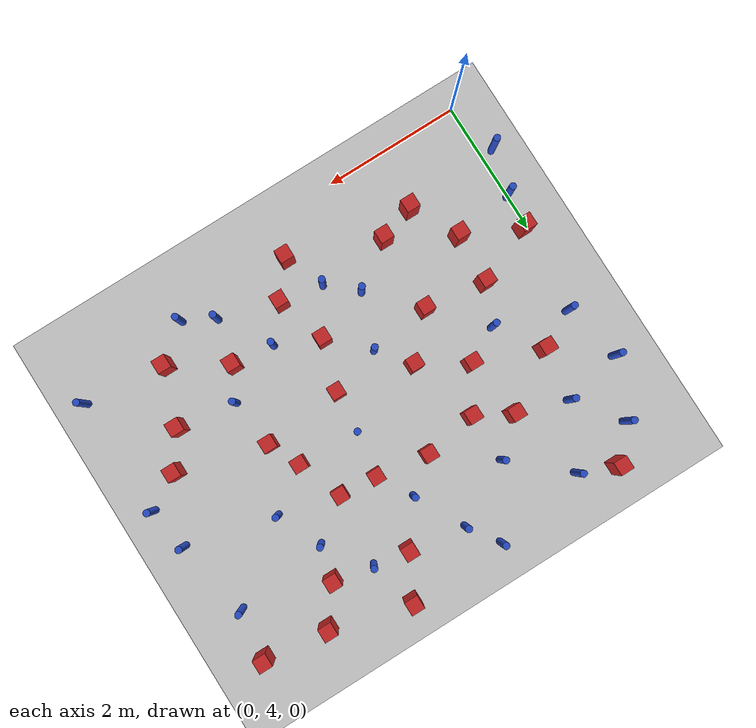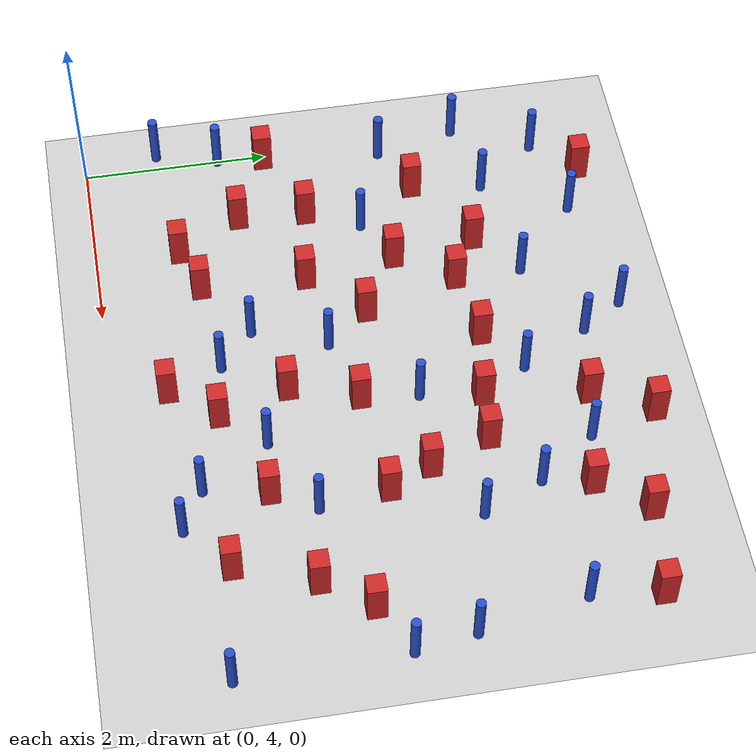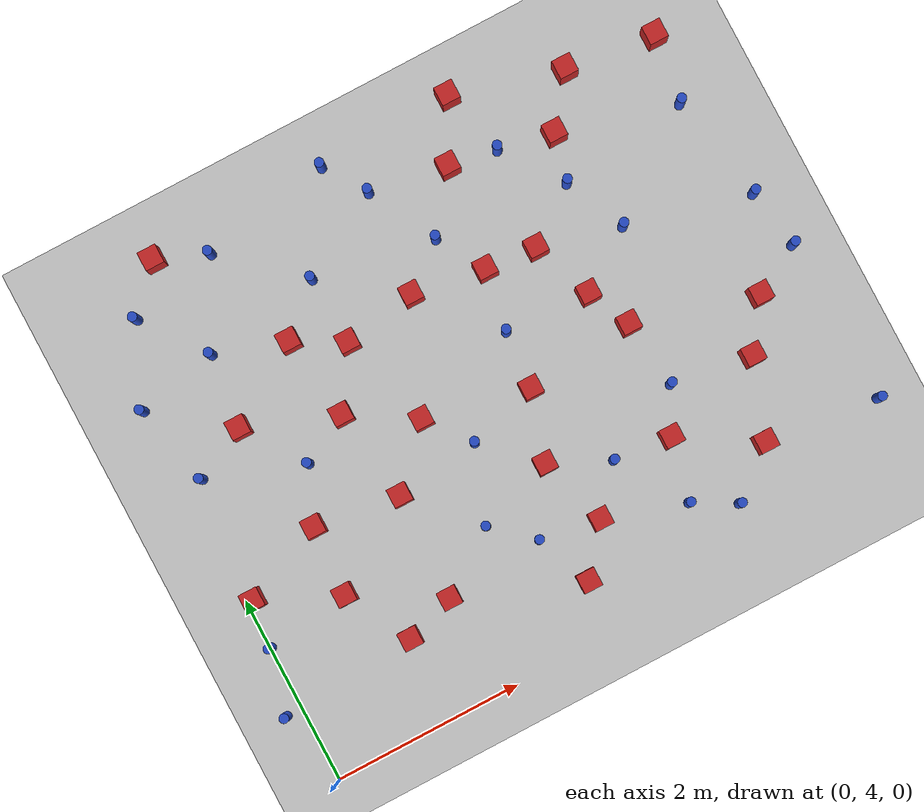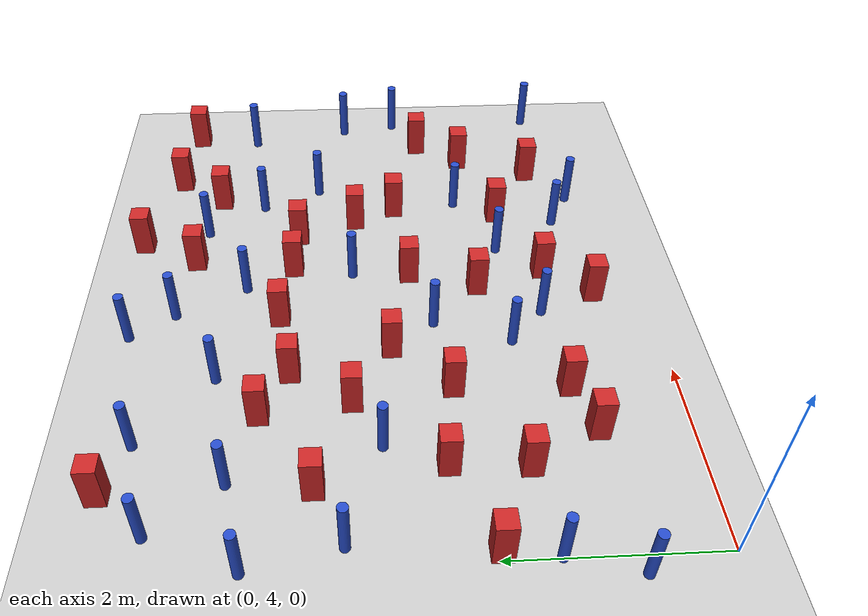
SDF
<sdf version="1.6">
 <world name="default">
  <model name="ground_plane">
   <static>1</static>
   <link name="link">
    <collision name="collision">
     <geometry><plane><normal>0 0 1</normal><size>100 100</size></plane></geometry>
     <surface><friction><ode><mu>100</mu><mu2>50</mu2></ode></friction></surface>
    </collision>
    <visual name="visual">
     <cast_shadows>0</cast_shadows>
     <geometry><plane><normal>0 0 1</normal><size>100 100</size></plane></geometry>
     <material>
      <ambient>1.0 1.0 1.0 1.0</ambient>
      <diffuse>0.8 0.8 0.8 1.0</diffuse>
      <specular>0.01 0.01 0.01 1.000000</specular>
     </material>
    </visual>
   </link>
  </model>
  <model name="square_post_obstacle0">
   <static>true</static>
   <pose>1.71352744316 7.17949015912 1.91545236811e-07 -7.35059704564e-06 1.12565212e-07 2.39332434364e-05</pose>
   <link name="link">
    <pose>0 0 0.25 0 -0 0</pose>
    <inertial>
     <mass>100</mass>
     <inertia>
      <ixx>0.166667</ixx>
      <ixy>0</ixy>
      <ixz>0</ixz>
      <iyy>0.166667</iyy>
      <iyz>0</iyz>
      <izz>0.166667</izz>
     </inertia>
    </inertial>
    <collision name="collision"><geometry><box><size>.2 .2 .5</size></box></geometry></collision>
    <visual name="visual">
     <geometry><box><size>.2 .2 .5</size></box></geometry>
     <material>
      <script><name>Gazebo/Red</name><uri>file://media/materials/scripts/gazebo.material</uri></script>
     </material>
    </visual>
   </link>
  </model>
  <model name="pole_obstacle3">
   <static>true</static>
   <pose>2.74798672065 6.31970369617 7.38925637345e-09 -8.47170692798e-08 1.24976765033e-08 -1.74513093019e-07</pose>
   <link name="link">
    <pose>0 0 0.3 0 -0 0</pose>
    <inertial>
     <mass>1</mass>
     <inertia><ixx>0.145833</ixx><ixy>0</ixy><ixz>0</ixz><iyy>0.145833</iyy><iyz>0</iyz><izz>0.125</izz></inertia>
    </inertial>
    <collision name="collision">
     <geometry><cylinder><radius>0.05</radius><length>.6</length></cylinder></geometry>
    </collision>
    <visual name="visual">
     <geometry><cylinder><radius>0.05</radius><length>.6</length></cylinder></geometry>
     <material>
      <script><name>Gazebo/Blue</name><uri>file://media/materials/scripts/gazebo.material</uri></script>
     </material>
    </visual>
   </link>
  </model>
  <model name="pole_obstacle6">
   <static>true</static>
   <pose>3.88461171138 5.51924652221 7.38925637345e-09 -8.47170692798e-08 1.24976765033e-08 -1.74513093019e-07</pose>
   <link name="link">
    <pose>0 0 0.3 0 -0 0</pose>
    <inertial>
     <mass>1</mass>
     <inertia><ixx>0.145833</ixx><ixy>0</ixy><ixz>0</ixz><iyy>0.145833</iyy><iyz>0</iyz><izz>0.125</izz></inertia>
    </inertial>
    <collision name="collision">
     <geometry><cylinder><radius>0.05</radius><length>.6</length></cylinder></geometry>
    </collision>
    <visual name="visual">
     <geometry><cylinder><radius>0.05</radius><length>.6</length></cylinder></geometry>
     <material>
      <script><name>Gazebo/Blue</name><uri>file://media/materials/scripts/gazebo.material</uri></script>
     </material>
    </visual>
   </link>
  </model>
  <model name="square_post_obstacle14">
   <static>true</static>
   <pose>2.10513833273 7.78706468619 1.91545236811e-07 -7.35059704564e-06 1.12565212e-07 2.39332434364e-05</pose>
   <link name="link">
    <pose>0 0 0.25 0 -0 0</pose>
    <inertial>
     <mass>100</mass>
     <inertia>
      <ixx>0.166667</ixx>
      <ixy>0</ixy>
      <ixz>0</ixz>
      <iyy>0.166667</iyy>
      <iyz>0</iyz>
      <izz>0.166667</izz>
     </inertia>
    </inertial>
    <collision name="collision"><geometry><box><size>.2 .2 .5</size></box></geometry></collision>
    <visual name="visual">
     <geometry><box><size>.2 .2 .5</size></box></geometry>
     <material>
      <script><name>Gazebo/Red</name><uri>file://media/materials/scripts/gazebo.material</uri></script>
     </material>
    </visual>
   </link>
  </model>
  <model name="square_post_obstacle27">
   <static>true</static>
   <pose>3.6452830637 7.7888560963 1.91545236811e-07 -7.35059704564e-06 1.12565212e-07 2.39332434364e-05</pose>
   <link name="link">
    <pose>0 0 0.25 0 -0 0</pose>
    <inertial>
     <mass>100</mass>
     <inertia>
      <ixx>0.166667</ixx>
      <ixy>0</ixy>
      <ixz>0</ixz>
      <iyy>0.166667</iyy>
      <iyz>0</iyz>
      <izz>0.166667</izz>
     </inertia>
    </inertial>
    <collision name="collision"><geometry><box><size>.2 .2 .5</size></box></geometry></collision>
    <visual name="visual">
     <geometry><box><size>.2 .2 .5</size></box></geometry>
     <material>
      <script><name>Gazebo/Red</name><uri>file://media/materials/scripts/gazebo.material</uri></script>
     </material>
    </visual>
   </link>
  </model>
  <model name="pole_obstacle22">
   <static>true</static>
   <pose>4.7871799896 4.55580979346 7.38925637345e-09 -8.47170692796e-08 1.24976764786e-08 -1.74513093032e-07</pose>
   <link name="link">
    <pose>0 0 0.3 0 -0 0</pose>
    <inertial>
     <mass>1</mass>
     <inertia><ixx>0.145833</ixx><ixy>0</ixy><ixz>0</ixz><iyy>0.145833</iyy><iyz>0</iyz><izz>0.125</izz></inertia>
    </inertial>
    <collision name="collision">
     <geometry><cylinder><radius>0.05</radius><length>.6</length></cylinder></geometry>
    </collision>
    <visual name="visual">
     <geometry><cylinder><radius>0.05</radius><length>.6</length></cylinder></geometry>
     <material>
      <script><name>Gazebo/Blue</name><uri>file://media/materials/scripts/gazebo.material</uri></script>
     </material>
    </visual>
   </link>
  </model>
  <model name="pole_obstacle49">
   <static>true</static>
   <pose>2.4573898018 5.53494702825 7.38925637345e-09 -8.47170692798e-08 1.24976765033e-08 -1.74513093019e-07</pose>
   <link name="link">
    <pose>0 0 0.3 0 -0 0</pose>
    <inertial>
     <mass>1</mass>
     <inertia><ixx>0.145833</ixx><ixy>0</ixy><ixz>0</ixz><iyy>0.145833</iyy><iyz>0</iyz><izz>0.125</izz></inertia>
    </inertial>
    <collision name="collision">
     <geometry><cylinder><radius>0.05</radius><length>.6</length></cylinder></geometry>
    </collision>
    <visual name="visual">
     <geometry><cylinder><radius>0.05</radius><length>.6</length></cylinder></geometry>
     <material>
      <script><name>Gazebo/Blue</name><uri>file://media/materials/scripts/gazebo.material</uri></script>
     </material>
    </visual>
   </link>
  </model>
  <model name="square_post_obstacle50">
   <static>true</static>
   <pose>3.49156843762 6.53330623845 1.91545236811e-07 -7.35059704564e-06 1.12565212e-07 2.39332434364e-05</pose>
   <link name="link">
    <pose>0 0 0.25 0 -0 0</pose>
    <inertial>
     <mass>100</mass>
     <inertia>
      <ixx>0.166667</ixx>
      <ixy>0</ixy>
      <ixz>0</ixz>
      <iyy>0.166667</iyy>
      <iyz>0</iyz>
      <izz>0.166667</izz>
     </inertia>
    </inertial>
    <collision name="collision"><geometry><box><size>.2 .2 .5</size></box></geometry></collision>
    <visual name="visual">
     <geometry><box><size>.2 .2 .5</size></box></geometry>
     <material>
      <script><name>Gazebo/Red</name><uri>file://media/materials/scripts/gazebo.material</uri></script>
     </material>
    </visual>
   </link>
  </model>
  <model name="pole_obstacle54">
   <static>true</static>
   <pose>6.35760854263 7.21048283977 7.38925637345e-09 -8.47170692796e-08 1.24976764786e-08 -1.74513093032e-07</pose>
   <link name="link">
    <pose>0 0 0.3 0 -0 0</pose>
    <inertial>
     <mass>1</mass>
     <inertia><ixx>0.145833</ixx><ixy>0</ixy><ixz>0</ixz><iyy>0.145833</iyy><iyz>0</iyz><izz>0.125</izz></inertia>
    </inertial>
    <collision name="collision">
     <geometry><cylinder><radius>0.05</radius><length>.6</length></cylinder></geometry>
    </collision>
    <visual name="visual">
     <geometry><cylinder><radius>0.05</radius><length>.6</length></cylinder></geometry>
     <material>
      <script><name>Gazebo/Blue</name><uri>file://media/materials/scripts/gazebo.material</uri></script>
     </material>
    </visual>
   </link>
  </model>
  <model name="square_post_obstacle60">
   <static>true</static>
   <pose>0.909176047702 5.59197059515 1.91545236811e-07 -7.35059704564e-06 1.12565212e-07 2.39332434364e-05</pose>
   <link name="link">
    <pose>0 0 0.25 0 -0 0</pose>
    <inertial>
     <mass>100</mass>
     <inertia>
      <ixx>0.166667</ixx>
      <ixy>0</ixy>
      <ixz>0</ixz>
      <iyy>0.166667</iyy>
      <iyz>0</iyz>
      <izz>0.166667</izz>
     </inertia>
    </inertial>
    <collision name="collision"><geometry><box><size>.2 .2 .5</size></box></geometry></collision>
    <visual name="visual">
     <geometry><box><size>.2 .2 .5</size></box></geometry>
     <material>
      <script><name>Gazebo/Red</name><uri>file://media/materials/scripts/gazebo.material</uri></script>
     </material>
    </visual>
   </link>
  </model>
  <model name="pole_obstacle57">
   <static>true</static>
   <pose>-0.166587825664 4.79864101538 7.38925637345e-09 -8.47170692799e-08 1.24976765043e-08 -1.74513093019e-07</pose>
   <link name="link">
    <pose>0 0 0.3 0 -0 0</pose>
    <inertial>
     <mass>1</mass>
     <inertia><ixx>0.145833</ixx><ixy>0</ixy><ixz>0</ixz><iyy>0.145833</iyy><iyz>0</iyz><izz>0.125</izz></inertia>
    </inertial>
    <collision name="collision">
     <geometry><cylinder><radius>0.05</radius><length>.6</length></cylinder></geometry>
    </collision>
    <visual name="visual">
     <geometry><cylinder><radius>0.05</radius><length>.6</length></cylinder></geometry>
     <material>
      <script><name>Gazebo/Blue</name><uri>file://media/materials/scripts/gazebo.material</uri></script>
     </material>
    </visual>
   </link>
  </model>
  <model name="square_post_obstacle68">
   <static>true</static>
   <pose>2.39195266276 6.77349924704 1.91545236811e-07 -7.35059704564e-06 1.12565212e-07 2.39332434364e-05</pose>
   <link name="link">
    <pose>0 0 0.25 0 -0 0</pose>
    <inertial>
     <mass>100</mass>
     <inertia>
      <ixx>0.166667</ixx>
      <ixy>0</ixy>
      <ixz>0</ixz>
      <iyy>0.166667</iyy>
      <iyz>0</iyz>
      <izz>0.166667</izz>
     </inertia>
    </inertial>
    <collision name="collision"><geometry><box><size>.2 .2 .5</size></box></geometry></collision>
    <visual name="visual">
     <geometry><box><size>.2 .2 .5</size></box></geometry>
     <material>
      <script><name>Gazebo/Red</name><uri>file://media/materials/scripts/gazebo.material</uri></script>
     </material>
    </visual>
   </link>
  </model>
  <model name="pole_obstacle66">
   <static>true</static>
   <pose>5.05733438239 7.53081941678 7.38925637345e-09 -8.47170692796e-08 1.24976764786e-08 -1.74513093032e-07</pose>
   <link name="link">
    <pose>0 0 0.3 0 -0 0</pose>
    <inertial>
     <mass>1</mass>
     <inertia><ixx>0.145833</ixx><ixy>0</ixy><ixz>0</ixz><iyy>0.145833</iyy><iyz>0</iyz><izz>0.125</izz></inertia>
    </inertial>
    <collision name="collision">
     <geometry><cylinder><radius>0.05</radius><length>.6</length></cylinder></geometry>
    </collision>
    <visual name="visual">
     <geometry><cylinder><radius>0.05</radius><length>.6</length></cylinder></geometry>
     <material>
      <script><name>Gazebo/Blue</name><uri>file://media/materials/scripts/gazebo.material</uri></script>
     </material>
    </visual>
   </link>
  </model>
  <model name="square_post_obstacle70">
   <static>true</static>
   <pose>0.75419684791 7.53908991765 1.91545236811e-07 -7.35059704564e-06 1.12565212e-07 2.39332434364e-05</pose>
   <link name="link">
    <pose>0 0 0.25 0 -0 0</pose>
    <inertial>
     <mass>100</mass>
     <inertia>
      <ixx>0.166667</ixx>
      <ixy>0</ixy>
      <ixz>0</ixz>
      <iyy>0.166667</iyy>
      <iyz>0</iyz>
      <izz>0.166667</izz>
     </inertia>
    </inertial>
    <collision name="collision"><geometry><box><size>.2 .2 .5</size></box></geometry></collision>
    <visual name="visual">
     <geometry><box><size>.2 .2 .5</size></box></geometry>
     <material>
      <script><name>Gazebo/Red</name><uri>file://media/materials/scripts/gazebo.material</uri></script>
     </material>
    </visual>
   </link>
  </model>
  <model name="square_post_obstacle74">
   <static>true</static>
   <pose>3.26489126641 5.81015581085 1.91545236811e-07 -7.35059704564e-06 1.12565212e-07 2.39332434364e-05</pose>
   <link name="link">
    <pose>0 0 0.25 0 -0 0</pose>
    <inertial>
     <mass>100</mass>
     <inertia>
      <ixx>0.166667</ixx>
      <ixy>0</ixy>
      <ixz>0</ixz>
      <iyy>0.166667</iyy>
      <iyz>0</iyz>
      <izz>0.166667</izz>
     </inertia>
    </inertial>
    <collision name="collision"><geometry><box><size>.2 .2 .5</size></box></geometry></collision>
    <visual name="visual">
     <geometry><box><size>.2 .2 .5</size></box></geometry>
     <material>
      <script><name>Gazebo/Red</name><uri>file://media/materials/scripts/gazebo.material</uri></script>
     </material>
    </visual>
   </link>
  </model>
  <model name="pole_obstacle69">
   <static>true</static>
   <pose>0.353586229454 8.97594618525 7.38925637345e-09 -8.47170692796e-08 1.24976764724e-08 -1.74513093036e-07</pose>
   <link name="link">
    <pose>0 0 0.3 0 -0 0</pose>
    <inertial>
     <mass>1</mass>
     <inertia><ixx>0.145833</ixx><ixy>0</ixy><ixz>0</ixz><iyy>0.145833</iyy><iyz>0</iyz><izz>0.125</izz></inertia>
    </inertial>
    <collision name="collision">
     <geometry><cylinder><radius>0.05</radius><length>.6</length></cylinder></geometry>
    </collision>
    <visual name="visual">
     <geometry><cylinder><radius>0.05</radius><length>.6</length></cylinder></geometry>
     <material>
      <script><name>Gazebo/Blue</name><uri>file://media/materials/scripts/gazebo.material</uri></script>
     </material>
    </visual>
   </link>
  </model>
  <model name="pole_obstacle70">
   <static>true</static>
   <pose>4.3473768278 4.7969233545 7.38925637345e-09 -8.47170692796e-08 1.24976764786e-08 -1.74513093032e-07</pose>
   <link name="link">
    <pose>0 0 0.3 0 -0 0</pose>
    <inertial>
     <mass>1</mass>
     <inertia><ixx>0.145833</ixx><ixy>0</ixy><ixz>0</ixz><iyy>0.145833</iyy><iyz>0</iyz><izz>0.125</izz></inertia>
    </inertial>
    <collision name="collision">
     <geometry><cylinder><radius>0.05</radius><length>.6</length></cylinder></geometry>
    </collision>
    <visual name="visual">
     <geometry><cylinder><radius>0.05</radius><length>.6</length></cylinder></geometry>
     <material>
      <script><name>Gazebo/Blue</name><uri>file://media/materials/scripts/gazebo.material</uri></script>
     </material>
    </visual>
   </link>
  </model>
  <model name="pole_obstacle71">
   <static>true</static>
   <pose>6.46204994489 6.57750268358 7.38925637345e-09 -8.47170692796e-08 1.24976764786e-08 -1.74513093032e-07</pose>
   <link name="link">
    <pose>0 0 0.3 0 -0 0</pose>
    <inertial>
     <mass>1</mass>
     <inertia><ixx>0.145833</ixx><ixy>0</ixy><ixz>0</ixz><iyy>0.145833</iyy><iyz>0</iyz><izz>0.125</izz></inertia>
    </inertial>
    <collision name="collision">
     <geometry><cylinder><radius>0.05</radius><length>.6</length></cylinder></geometry>
    </collision>
    <visual name="visual">
     <geometry><cylinder><radius>0.05</radius><length>.6</length></cylinder></geometry>
     <material>
      <script><name>Gazebo/Blue</name><uri>file://media/materials/scripts/gazebo.material</uri></script>
     </material>
    </visual>
   </link>
  </model>
  <model name="pole_obstacle77">
   <static>true</static>
   <pose>3.5406921186 7.14673714828 7.38925637345e-09 -8.47170692798e-08 1.24976765033e-08 -1.74513093019e-07</pose>
   <link name="link">
    <pose>0 0 0.3 0 -0 0</pose>
    <inertial>
     <mass>1</mass>
     <inertia><ixx>0.145833</ixx><ixy>0</ixy><ixz>0</ixz><iyy>0.145833</iyy><iyz>0</iyz><izz>0.125</izz></inertia>
    </inertial>
    <collision name="collision">
     <geometry><cylinder><radius>0.05</radius><length>.6</length></cylinder></geometry>
    </collision>
    <visual name="visual">
     <geometry><cylinder><radius>0.05</radius><length>.6</length></cylinder></geometry>
     <material>
      <script><name>Gazebo/Blue</name><uri>file://media/materials/scripts/gazebo.material</uri></script>
     </material>
    </visual>
   </link>
  </model>
  <model name="square_post_obstacle79">
   <static>true</static>
   <pose>2.88177136862 7.91104148776 1.91545236811e-07 -7.35059704564e-06 1.12565212e-07 2.39332434364e-05</pose>
   <link name="link">
    <pose>0 0 0.25 0 -0 0</pose>
    <inertial>
     <mass>100</mass>
     <inertia>
      <ixx>0.166667</ixx>
      <ixy>0</ixy>
      <ixz>0</ixz>
      <iyy>0.166667</iyy>
      <iyz>0</iyz>
      <izz>0.166667</izz>
     </inertia>
    </inertial>
    <collision name="collision"><geometry><box><size>.2 .2 .5</size></box></geometry></collision>
    <visual name="visual">
     <geometry><box><size>.2 .2 .5</size></box></geometry>
     <material>
      <script><name>Gazebo/Red</name><uri>file://media/materials/scripts/gazebo.material</uri></script>
     </material>
    </visual>
   </link>
  </model>
  <model name="pole_obstacle81">
   <static>true</static>
   <pose>4.76787671606 8.17202211603 7.38925637345e-09 -8.471706928e-08 1.24976765081e-08 -1.74513093015e-07</pose>
   <link name="link">
    <pose>0 0 0.3 0 -0 0</pose>
    <inertial>
     <mass>1</mass>
     <inertia><ixx>0.145833</ixx><ixy>0</ixy><ixz>0</ixz><iyy>0.145833</iyy><iyz>0</iyz><izz>0.125</izz></inertia>
    </inertial>
    <collision name="collision">
     <geometry><cylinder><radius>0.05</radius><length>.6</length></cylinder></geometry>
    </collision>
    <visual name="visual">
     <geometry><cylinder><radius>0.05</radius><length>.6</length></cylinder></geometry>
     <material>
      <script><name>Gazebo/Blue</name><uri>file://media/materials/scripts/gazebo.material</uri></script>
     </material>
    </visual>
   </link>
  </model>
  <model name="pole_obstacle82">
   <static>true</static>
   <pose>6.49385827748 4.83316404223 7.38925637345e-09 -8.47170692796e-08 1.24976764786e-08 -1.74513093032e-07</pose>
   <link name="link">
    <pose>0 0 0.3 0 -0 0</pose>
    <inertial>
     <mass>1</mass>
     <inertia><ixx>0.145833</ixx><ixy>0</ixy><ixz>0</ixz><iyy>0.145833</iyy><iyz>0</iyz><izz>0.125</izz></inertia>
    </inertial>
    <collision name="collision">
     <geometry><cylinder><radius>0.05</radius><length>.6</length></cylinder></geometry>
    </collision>
    <visual name="visual">
     <geometry><cylinder><radius>0.05</radius><length>.6</length></cylinder></geometry>
     <material>
      <script><name>Gazebo/Blue</name><uri>file://media/materials/scripts/gazebo.material</uri></script>
     </material>
    </visual>
   </link>
  </model>
  <model name="square_post_obstacle81">
   <static>true</static>
   <pose>5.28984670463 4.9787061922 1.91545236811e-07 -7.35059704564e-06 1.12565212e-07 2.39332434364e-05</pose>
   <link name="link">
    <pose>0 0 0.25 0 -0 0</pose>
    <inertial>
     <mass>100</mass>
     <inertia>
      <ixx>0.166667</ixx>
      <ixy>0</ixy>
      <ixz>0</ixz>
      <iyy>0.166667</iyy>
      <iyz>0</iyz>
      <izz>0.166667</izz>
     </inertia>
    </inertial>
    <collision name="collision"><geometry><box><size>.2 .2 .5</size></box></geometry></collision>
    <visual name="visual">
     <geometry><box><size>.2 .2 .5</size></box></geometry>
     <material>
      <script><name>Gazebo/Red</name><uri>file://media/materials/scripts/gazebo.material</uri></script>
     </material>
    </visual>
   </link>
  </model>
  <model name="square_post_obstacle83">
   <static>true</static>
   <pose>4.12373040631 9.48949115331 1.91545236811e-07 -7.35059704564e-06 1.12565212e-07 2.39332434364e-05</pose>
   <link name="link">
    <pose>0 0 0.25 0 -0 0</pose>
    <inertial>
     <mass>100</mass>
     <inertia>
      <ixx>0.166667</ixx>
      <ixy>0</ixy>
      <ixz>0</ixz>
      <iyy>0.166667</iyy>
      <iyz>0</iyz>
      <izz>0.166667</izz>
     </inertia>
    </inertial>
    <collision name="collision"><geometry><box><size>.2 .2 .5</size></box></geometry></collision>
    <visual name="visual">
     <geometry><box><size>.2 .2 .5</size></box></geometry>
     <material>
      <script><name>Gazebo/Red</name><uri>file://media/materials/scripts/gazebo.material</uri></script>
     </material>
    </visual>
   </link>
  </model>
  <model name="square_post_obstacle87">
   <static>true</static>
   <pose>0.778384553683 9.41835411663 1.91545236811e-07 -7.35059704564e-06 1.12565212e-07 2.39332434364e-05</pose>
   <link name="link">
    <pose>0 0 0.25 0 -0 0</pose>
    <inertial>
     <mass>100</mass>
     <inertia>
      <ixx>0.166667</ixx>
      <ixy>0</ixy>
      <ixz>0</ixz>
      <iyy>0.166667</iyy>
      <iyz>0</iyz>
      <izz>0.166667</izz>
     </inertia>
    </inertial>
    <collision name="collision"><geometry><box><size>.2 .2 .5</size></box></geometry></collision>
    <visual name="visual">
     <geometry><box><size>.2 .2 .5</size></box></geometry>
     <material>
      <script><name>Gazebo/Red</name><uri>file://media/materials/scripts/gazebo.material</uri></script>
     </material>
    </visual>
   </link>
  </model>
  <model name="pole_obstacle98">
   <static>true</static>
   <pose>2.98083464782 9.01295962004 7.38925637345e-09 -8.47170692793e-08 1.24976764408e-08 -1.74513093041e-07</pose>
   <link name="link">
    <pose>0 0 0.3 0 -0 0</pose>
    <inertial>
     <mass>1</mass>
     <inertia><ixx>0.145833</ixx><ixy>0</ixy><ixz>0</ixz><iyy>0.145833</iyy><iyz>0</iyz><izz>0.125</izz></inertia>
    </inertial>
    <collision name="collision">
     <geometry><cylinder><radius>0.05</radius><length>.6</length></cylinder></geometry>
    </collision>
    <visual name="visual">
     <geometry><cylinder><radius>0.05</radius><length>.6</length></cylinder></geometry>
     <material>
      <script><name>Gazebo/Blue</name><uri>file://media/materials/scripts/gazebo.material</uri></script>
     </material>
    </visual>
   </link>
  </model>
  <model name="square_post_obstacle97">
   <static>true</static>
   <pose>3.49146668258 5.06993222085 1.91545236811e-07 -7.35059704564e-06 1.12565212e-07 2.39332434364e-05</pose>
   <link name="link">
    <pose>0 0 0.25 0 -0 0</pose>
    <inertial>
     <mass>100</mass>
     <inertia>
      <ixx>0.166667</ixx>
      <ixy>0</ixy>
      <ixz>0</ixz>
      <iyy>0.166667</iyy>
      <iyz>0</iyz>
      <izz>0.166667</izz>
     </inertia>
    </inertial>
    <collision name="collision"><geometry><box><size>.2 .2 .5</size></box></geometry></collision>
    <visual name="visual">
     <geometry><box><size>.2 .2 .5</size></box></geometry>
     <material>
      <script><name>Gazebo/Red</name><uri>file://media/materials/scripts/gazebo.material</uri></script>
     </material>
    </visual>
   </link>
  </model>
  <model name="square_post_obstacle98">
   <static>true</static>
   <pose>1.81115926956 5.07780069174 1.91545236811e-07 -7.35059704564e-06 1.12565212e-07 2.39332434364e-05</pose>
   <link name="link">
    <pose>0 0 0.25 0 -0 0</pose>
    <inertial>
     <mass>100</mass>
     <inertia>
      <ixx>0.166667</ixx>
      <ixy>0</ixy>
      <ixz>0</ixz>
      <iyy>0.166667</iyy>
      <iyz>0</iyz>
      <izz>0.166667</izz>
     </inertia>
    </inertial>
    <collision name="collision"><geometry><box><size>.2 .2 .5</size></box></geometry></collision>
    <visual name="visual">
     <geometry><box><size>.2 .2 .5</size></box></geometry>
     <material>
      <script><name>Gazebo/Red</name><uri>file://media/materials/scripts/gazebo.material</uri></script>
     </material>
    </visual>
   </link>
  </model>
  <model name="square_post_obstacle103">
   <static>true</static>
   <pose>6.22166254641 9.06026710774 1.91545236811e-07 -7.35059704564e-06 1.12565212e-07 2.39332434364e-05</pose>
   <link name="link">
    <pose>0 0 0.25 0 -0 0</pose>
    <inertial>
     <mass>100</mass>
     <inertia>
      <ixx>0.166667</ixx>
      <ixy>0</ixy>
      <ixz>0</ixz>
      <iyy>0.166667</iyy>
      <iyz>0</iyz>
      <izz>0.166667</izz>
     </inertia>
    </inertial>
    <collision name="collision"><geometry><box><size>.2 .2 .5</size></box></geometry></collision>
    <visual name="visual">
     <geometry><box><size>.2 .2 .5</size></box></geometry>
     <material>
      <script><name>Gazebo/Red</name><uri>file://media/materials/scripts/gazebo.material</uri></script>
     </material>
    </visual>
   </link>
  </model>
  <model name="square_post_obstacle107">
   <static>true</static>
   <pose>4.88741984487 8.66565580224 1.91545236811e-07 -7.35059704564e-06 1.12565212e-07 2.39332434364e-05</pose>
   <link name="link">
    <pose>0 0 0.25 0 -0 0</pose>
    <inertial>
     <mass>100</mass>
     <inertia>
      <ixx>0.166667</ixx>
      <ixy>0</ixy>
      <ixz>0</ixz>
      <iyy>0.166667</iyy>
      <iyz>0</iyz>
      <izz>0.166667</izz>
     </inertia>
    </inertial>
    <collision name="collision"><geometry><box><size>.2 .2 .5</size></box></geometry></collision>
    <visual name="visual">
     <geometry><box><size>.2 .2 .5</size></box></geometry>
     <material>
      <script><name>Gazebo/Red</name><uri>file://media/materials/scripts/gazebo.material</uri></script>
     </material>
    </visual>
   </link>
  </model>
  <model name="square_post_obstacle109">
   <static>true</static>
   <pose>3.1042914452 4.58492148483 1.91545236811e-07 -7.35059704564e-06 1.12565212e-07 2.39332434364e-05</pose>
   <link name="link">
    <pose>0 0 0.25 0 -0 0</pose>
    <inertial>
     <mass>100</mass>
     <inertia>
      <ixx>0.166667</ixx>
      <ixy>0</ixy>
      <ixz>0</ixz>
      <iyy>0.166667</iyy>
      <iyz>0</iyz>
      <izz>0.166667</izz>
     </inertia>
    </inertial>
    <collision name="collision"><geometry><box><size>.2 .2 .5</size></box></geometry></collision>
    <visual name="visual">
     <geometry><box><size>.2 .2 .5</size></box></geometry>
     <material>
      <script><name>Gazebo/Red</name><uri>file://media/materials/scripts/gazebo.material</uri></script>
     </material>
    </visual>
   </link>
  </model>
  <model name="square_post_obstacle118">
   <static>true</static>
   <pose>5.58256357082 5.79396998367 1.91545236811e-07 -7.35059704564e-06 1.12565212e-07 2.39332434364e-05</pose>
   <link name="link">
    <pose>0 0 0.25 0 -0 0</pose>
    <inertial>
     <mass>100</mass>
     <inertia>
      <ixx>0.166667</ixx>
      <ixy>0</ixy>
      <ixz>0</ixz>
      <iyy>0.166667</iyy>
      <iyz>0</iyz>
      <izz>0.166667</izz>
     </inertia>
    </inertial>
    <collision name="collision"><geometry><box><size>.2 .2 .5</size></box></geometry></collision>
    <visual name="visual">
     <geometry><box><size>.2 .2 .5</size></box></geometry>
     <material>
      <script><name>Gazebo/Red</name><uri>file://media/materials/scripts/gazebo.material</uri></script>
     </material>
    </visual>
   </link>
  </model>
  <model name="pole_obstacle139">
   <static>true</static>
   <pose>0.187549166651 7.26856672885 7.38925637345e-09 -8.47170692799e-08 1.24976765068e-08 -1.74513093018e-07</pose>
   <link name="link">
    <pose>0 0 0.3 0 -0 0</pose>
    <inertial>
     <mass>1</mass>
     <inertia><ixx>0.145833</ixx><ixy>0</ixy><ixz>0</ixz><iyy>0.145833</iyy><iyz>0</iyz><izz>0.125</izz></inertia>
    </inertial>
    <collision name="collision">
     <geometry><cylinder><radius>0.05</radius><length>.6</length></cylinder></geometry>
    </collision>
    <visual name="visual">
     <geometry><cylinder><radius>0.05</radius><length>.6</length></cylinder></geometry>
     <material>
      <script><name>Gazebo/Blue</name><uri>file://media/materials/scripts/gazebo.material</uri></script>
     </material>
    </visual>
   </link>
  </model>
  <model name="square_post_obstacle126">
   <static>true</static>
   <pose>4.18997928367 7.74289774981 1.91545236811e-07 -7.35059704564e-06 1.12565212e-07 2.39332434364e-05</pose>
   <link name="link">
    <pose>0 0 0.25 0 -0 0</pose>
    <inertial>
     <mass>100</mass>
     <inertia>
      <ixx>0.166667</ixx>
      <ixy>0</ixy>
      <ixz>0</ixz>
      <iyy>0.166667</iyy>
      <iyz>0</iyz>
      <izz>0.166667</izz>
     </inertia>
    </inertial>
    <collision name="collision"><geometry><box><size>.2 .2 .5</size></box></geometry></collision>
    <visual name="visual">
     <geometry><box><size>.2 .2 .5</size></box></geometry>
     <material>
      <script><name>Gazebo/Red</name><uri>file://media/materials/scripts/gazebo.material</uri></script>
     </material>
    </visual>
   </link>
  </model>
  <model name="square_post_obstacle127">
   <static>true</static>
   <pose>5.9346399143 6.29008564423 1.91545236811e-07 -7.35059704564e-06 1.12565212e-07 2.39332434364e-05</pose>
   <link name="link">
    <pose>0 0 0.25 0 -0 0</pose>
    <inertial>
     <mass>100</mass>
     <inertia>
      <ixx>0.166667</ixx>
      <ixy>0</ixy>
      <ixz>0</ixz>
      <iyy>0.166667</iyy>
      <iyz>0</iyz>
      <izz>0.166667</izz>
     </inertia>
    </inertial>
    <collision name="collision"><geometry><box><size>.2 .2 .5</size></box></geometry></collision>
    <visual name="visual">
     <geometry><box><size>.2 .2 .5</size></box></geometry>
     <material>
      <script><name>Gazebo/Red</name><uri>file://media/materials/scripts/gazebo.material</uri></script>
     </material>
    </visual>
   </link>
  </model>
  <model name="square_post_obstacle128">
   <static>true</static>
   <pose>0.083783884549 5.96984502115 1.91545236811e-07 -7.35059704564e-06 1.12565212e-07 2.39332434364e-05</pose>
   <link name="link">
    <pose>0 0 0.25 0 -0 0</pose>
    <inertial>
     <mass>100</mass>
     <inertia>
      <ixx>0.166667</ixx>
      <ixy>0</ixy>
      <ixz>0</ixz>
      <iyy>0.166667</iyy>
      <iyz>0</iyz>
      <izz>0.166667</izz>
     </inertia>
    </inertial>
    <collision name="collision"><geometry><box><size>.2 .2 .5</size></box></geometry></collision>
    <visual name="visual">
     <geometry><box><size>.2 .2 .5</size></box></geometry>
     <material>
      <script><name>Gazebo/Red</name><uri>file://media/materials/scripts/gazebo.material</uri></script>
     </material>
    </visual>
   </link>
  </model>
  <model name="square_post_obstacle133">
   <static>true</static>
   <pose>1.85287212786 6.20357284518 1.91545236811e-07 -7.35059704564e-06 1.12565212e-07 2.39332434364e-05</pose>
   <link name="link">
    <pose>0 0 0.25 0 -0 0</pose>
    <inertial>
     <mass>100</mass>
     <inertia>
      <ixx>0.166667</ixx>
      <ixy>0</ixy>
      <ixz>0</ixz>
      <iyy>0.166667</iyy>
      <iyz>0</iyz>
      <izz>0.166667</izz>
     </inertia>
    </inertial>
    <collision name="collision"><geometry><box><size>.2 .2 .5</size></box></geometry></collision>
    <visual name="visual">
     <geometry><box><size>.2 .2 .5</size></box></geometry>
     <material>
      <script><name>Gazebo/Red</name><uri>file://media/materials/scripts/gazebo.material</uri></script>
     </material>
    </visual>
   </link>
  </model>
  <model name="square_post_obstacle134">
   <static>true</static>
   <pose>5.27783732403 9.17685547167 1.91545236811e-07 -7.35059704564e-06 1.12565212e-07 2.39332434364e-05</pose>
   <link name="link">
    <pose>0 0 0.25 0 -0 0</pose>
    <inertial>
     <mass>100</mass>
     <inertia>
      <ixx>0.166667</ixx>
      <ixy>0</ixy>
      <ixz>0</ixz>
      <iyy>0.166667</iyy>
      <iyz>0</iyz>
      <izz>0.166667</izz>
     </inertia>
    </inertial>
    <collision name="collision"><geometry><box><size>.2 .2 .5</size></box></geometry></collision>
    <visual name="visual">
     <geometry><box><size>.2 .2 .5</size></box></geometry>
     <material>
      <script><name>Gazebo/Red</name><uri>file://media/materials/scripts/gazebo.material</uri></script>
     </material>
    </visual>
   </link>
  </model>
  <model name="pole_obstacle149">
   <static>true</static>
   <pose>6.13601829197 8.34545351989 7.38925637345e-09 -8.471706928e-08 1.24976765081e-08 -1.74513093015e-07</pose>
   <link name="link">
    <pose>0 0 0.3 0 -0 0</pose>
    <inertial>
     <mass>1</mass>
     <inertia><ixx>0.145833</ixx><ixy>0</ixy><ixz>0</ixz><iyy>0.145833</iyy><iyz>0</iyz><izz>0.125</izz></inertia>
    </inertial>
    <collision name="collision">
     <geometry><cylinder><radius>0.05</radius><length>.6</length></cylinder></geometry>
    </collision>
    <visual name="visual">
     <geometry><cylinder><radius>0.05</radius><length>.6</length></cylinder></geometry>
     <material>
      <script><name>Gazebo/Blue</name><uri>file://media/materials/scripts/gazebo.material</uri></script>
     </material>
    </visual>
   </link>
  </model>
  <model name="pole_obstacle153">
   <static>true</static>
   <pose>0.848269330639 8.317972337 7.38925637345e-09 -8.47170692797e-08 1.249767648e-08 -1.74513093032e-07</pose>
   <link name="link">
    <pose>0 0 0.3 0 -0 0</pose>
    <inertial>
     <mass>1</mass>
     <inertia><ixx>0.145833</ixx><ixy>0</ixy><ixz>0</ixz><iyy>0.145833</iyy><iyz>0</iyz><izz>0.125</izz></inertia>
    </inertial>
    <collision name="collision">
     <geometry><cylinder><radius>0.05</radius><length>.6</length></cylinder></geometry>
    </collision>
    <visual name="visual">
     <geometry><cylinder><radius>0.05</radius><length>.6</length></cylinder></geometry>
     <material>
      <script><name>Gazebo/Blue</name><uri>file://media/materials/scripts/gazebo.material</uri></script>
     </material>
    </visual>
   </link>
  </model>
  <model name="square_post_obstacle148">
   <static>true</static>
   <pose>0.953032601276 6.3293560337 1.91545236811e-07 -7.35059704564e-06 1.12565212e-07 2.39332434364e-05</pose>
   <link name="link">
    <pose>0 0 0.25 0 -0 0</pose>
    <inertial>
     <mass>100</mass>
     <inertia>
      <ixx>0.166667</ixx>
      <ixy>0</ixy>
      <ixz>0</ixz>
      <iyy>0.166667</iyy>
      <iyz>0</iyz>
      <izz>0.166667</izz>
     </inertia>
    </inertial>
    <collision name="collision"><geometry><box><size>.2 .2 .5</size></box></geometry></collision>
    <visual name="visual">
     <geometry><box><size>.2 .2 .5</size></box></geometry>
     <material>
      <script><name>Gazebo/Red</name><uri>file://media/materials/scripts/gazebo.material</uri></script>
     </material>
    </visual>
   </link>
  </model>
  <model name="pole_obstacle157">
   <static>true</static>
   <pose>0.0129270660778 5.47099594562 7.38925637345e-09 -8.471706928e-08 1.24976765072e-08 -1.74513093018e-07</pose>
   <link name="link">
    <pose>0 0 0.3 0 -0 0</pose>
    <inertial>
     <mass>1</mass>
     <inertia><ixx>0.145833</ixx><ixy>0</ixy><ixz>0</ixz><iyy>0.145833</iyy><iyz>0</iyz><izz>0.125</izz></inertia>
    </inertial>
    <collision name="collision">
     <geometry><cylinder><radius>0.05</radius><length>.6</length></cylinder></geometry>
    </collision>
    <visual name="visual">
     <geometry><cylinder><radius>0.05</radius><length>.6</length></cylinder></geometry>
     <material>
      <script><name>Gazebo/Blue</name><uri>file://media/materials/scripts/gazebo.material</uri></script>
     </material>
    </visual>
   </link>
  </model>
  <model name="pole_obstacle161">
   <static>true</static>
   <pose>-0.0126505758477 8.13740535957 7.38925637345e-09 -8.47170692797e-08 1.24976764796e-08 -1.74513093032e-07</pose>
   <link name="link">
    <pose>0 0 0.3 0 -0 0</pose>
    <inertial>
     <mass>1</mass>
     <inertia><ixx>0.145833</ixx><ixy>0</ixy><ixz>0</ixz><iyy>0.145833</iyy><iyz>0</iyz><izz>0.125</izz></inertia>
    </inertial>
    <collision name="collision">
     <geometry><cylinder><radius>0.05</radius><length>.6</length></cylinder></geometry>
    </collision>
    <visual name="visual">
     <geometry><cylinder><radius>0.05</radius><length>.6</length></cylinder></geometry>
     <material>
      <script><name>Gazebo/Blue</name><uri>file://media/materials/scripts/gazebo.material</uri></script>
     </material>
    </visual>
   </link>
  </model>
  <model name="pole_obstacle178">
   <static>true</static>
   <pose>2.07870228282 8.51410835006 7.38925637345e-09 -8.47170692793e-08 1.24976764408e-08 -1.74513093041e-07</pose>
   <link name="link">
    <pose>0 0 0.3 0 -0 0</pose>
    <inertial>
     <mass>1</mass>
     <inertia><ixx>0.145833</ixx><ixy>0</ixy><ixz>0</ixz><iyy>0.145833</iyy><iyz>0</iyz><izz>0.125</izz></inertia>
    </inertial>
    <collision name="collision">
     <geometry><cylinder><radius>0.05</radius><length>.6</length></cylinder></geometry>
    </collision>
    <visual name="visual">
     <geometry><cylinder><radius>0.05</radius><length>.6</length></cylinder></geometry>
     <material>
      <script><name>Gazebo/Blue</name><uri>file://media/materials/scripts/gazebo.material</uri></script>
     </material>
    </visual>
   </link>
  </model>
  <model name="square_post_obstacle171">
   <static>true</static>
   <pose>3.79987001956 8.86984438417 1.91545236811e-07 -7.35059704564e-06 1.12565212e-07 2.39332434364e-05</pose>
   <link name="link">
    <pose>0 0 0.25 0 -0 0</pose>
    <inertial>
     <mass>100</mass>
     <inertia>
      <ixx>0.166667</ixx>
      <ixy>0</ixy>
      <ixz>0</ixz>
      <iyy>0.166667</iyy>
      <iyz>0</iyz>
      <izz>0.166667</izz>
     </inertia>
    </inertial>
    <collision name="collision"><geometry><box><size>.2 .2 .5</size></box></geometry></collision>
    <visual name="visual">
     <geometry><box><size>.2 .2 .5</size></box></geometry>
     <material>
      <script><name>Gazebo/Red</name><uri>file://media/materials/scripts/gazebo.material</uri></script>
     </material>
    </visual>
   </link>
  </model>
  <model name="square_post_obstacle181">
   <static>true</static>
   <pose>4.43643659852 7.09988508431 1.91545236811e-07 -7.35059704564e-06 1.12565212e-07 2.39332434364e-05</pose>
   <link name="link">
    <pose>0 0 0.25 0 -0 0</pose>
    <inertial>
     <mass>100</mass>
     <inertia>
      <ixx>0.166667</ixx>
      <ixy>0</ixy>
      <ixz>0</ixz>
      <iyy>0.166667</iyy>
      <iyz>0</iyz>
      <izz>0.166667</izz>
     </inertia>
    </inertial>
    <collision name="collision"><geometry><box><size>.2 .2 .5</size></box></geometry></collision>
    <visual name="visual">
     <geometry><box><size>.2 .2 .5</size></box></geometry>
     <material>
      <script><name>Gazebo/Red</name><uri>file://media/materials/scripts/gazebo.material</uri></script>
     </material>
    </visual>
   </link>
  </model>
  <model name="square_post_obstacle196">
   <static>true</static>
   <pose>4.49321554877 5.45853397698 1.91545236811e-07 -7.35059704564e-06 1.12565212e-07 2.39332434364e-05</pose>
   <link name="link">
    <pose>0 0 0.25 0 -0 0</pose>
    <inertial>
     <mass>100</mass>
     <inertia>
      <ixx>0.166667</ixx>
      <ixy>0</ixy>
      <ixz>0</ixz>
      <iyy>0.166667</iyy>
      <iyz>0</iyz>
      <izz>0.166667</izz>
     </inertia>
    </inertial>
    <collision name="collision"><geometry><box><size>.2 .2 .5</size></box></geometry></collision>
    <visual name="visual">
     <geometry><box><size>.2 .2 .5</size></box></geometry>
     <material>
      <script><name>Gazebo/Red</name><uri>file://media/materials/scripts/gazebo.material</uri></script>
     </material>
    </visual>
   </link>
  </model>
  <model name="square_post_obstacle202">
   <static>true</static>
   <pose>4.64580889379 6.64434258098 1.91545236811e-07 -7.35059704564e-06 1.12565212e-07 2.39332434364e-05</pose>
   <link name="link">
    <pose>0 0 0.25 0 -0 0</pose>
    <inertial>
     <mass>100</mass>
     <inertia>
      <ixx>0.166667</ixx>
      <ixy>0</ixy>
      <ixz>0</ixz>
      <iyy>0.166667</iyy>
      <iyz>0</iyz>
      <izz>0.166667</izz>
     </inertia>
    </inertial>
    <collision name="collision"><geometry><box><size>.2 .2 .5</size></box></geometry></collision>
    <visual name="visual">
     <geometry><box><size>.2 .2 .5</size></box></geometry>
     <material>
      <script><name>Gazebo/Red</name><uri>file://media/materials/scripts/gazebo.material</uri></script>
     </material>
    </visual>
   </link>
  </model>
  <model name="pole_obstacle192">
   <static>true</static>
   <pose>1.19607187722 6.90927101624 7.38925637345e-09 -8.47170692799e-08 1.24976765033e-08 -1.74513093018e-07</pose>
   <link name="link">
    <pose>0 0 0.3 0 -0 0</pose>
    <inertial>
     <mass>1</mass>
     <inertia><ixx>0.145833</ixx><ixy>0</ixy><ixz>0</ixz><iyy>0.145833</iyy><iyz>0</iyz><izz>0.125</izz></inertia>
    </inertial>
    <collision name="collision">
     <geometry><cylinder><radius>0.05</radius><length>.6</length></cylinder></geometry>
    </collision>
    <visual name="visual">
     <geometry><cylinder><radius>0.05</radius><length>.6</length></cylinder></geometry>
     <material>
      <script><name>Gazebo/Blue</name><uri>file://media/materials/scripts/gazebo.material</uri></script>
     </material>
    </visual>
   </link>
  </model>
  <model name="pole_obstacle197">
   <static>true</static>
   <pose>1.30809558298 9.2082085966 7.38925637345e-09 -8.47170692798e-08 1.24976764881e-08 -1.74513093027e-07</pose>
   <link name="link">
    <pose>0 0 0.3 0 -0 0</pose>
    <inertial>
     <mass>1</mass>
     <inertia><ixx>0.145833</ixx><ixy>0</ixy><ixz>0</ixz><iyy>0.145833</iyy><iyz>0</iyz><izz>0.125</izz></inertia>
    </inertial>
    <collision name="collision">
     <geometry><cylinder><radius>0.05</radius><length>.6</length></cylinder></geometry>
    </collision>
    <visual name="visual">
     <geometry><cylinder><radius>0.05</radius><length>.6</length></cylinder></geometry>
     <material>
      <script><name>Gazebo/Blue</name><uri>file://media/materials/scripts/gazebo.material</uri></script>
     </material>
    </visual>
   </link>
  </model>
  <model name="square_post_obstacle205">
   <static>true</static>
   <pose>1.59431612264 8.06912148077 1.91545236811e-07 -7.35059704564e-06 1.12565212e-07 2.39332434364e-05</pose>
   <link name="link">
    <pose>0 0 0.25 0 -0 0</pose>
    <inertial>
     <mass>100</mass>
     <inertia>
      <ixx>0.166667</ixx>
      <ixy>0</ixy>
      <ixz>0</ixz>
      <iyy>0.166667</iyy>
      <iyz>0</iyz>
      <izz>0.166667</izz>
     </inertia>
    </inertial>
    <collision name="collision"><geometry><box><size>.2 .2 .5</size></box></geometry></collision>
    <visual name="visual">
     <geometry><box><size>.2 .2 .5</size></box></geometry>
     <material>
      <script><name>Gazebo/Red</name><uri>file://media/materials/scripts/gazebo.material</uri></script>
     </material>
    </visual>
   </link>
  </model>
  <model name="pole_obstacle199">
   <static>true</static>
   <pose>4.73831074099 5.92163213821 7.38925637345e-09 -8.47170692796e-08 1.24976764786e-08 -1.74513093032e-07</pose>
   <link name="link">
    <pose>0 0 0.3 0 -0 0</pose>
    <inertial>
     <mass>1</mass>
     <inertia><ixx>0.145833</ixx><ixy>0</ixy><ixz>0</ixz><iyy>0.145833</iyy><iyz>0</iyz><izz>0.125</izz></inertia>
    </inertial>
    <collision name="collision">
     <geometry><cylinder><radius>0.05</radius><length>.6</length></cylinder></geometry>
    </collision>
    <visual name="visual">
     <geometry><cylinder><radius>0.05</radius><length>.6</length></cylinder></geometry>
     <material>
      <script><name>Gazebo/Blue</name><uri>file://media/materials/scripts/gazebo.material</uri></script>
     </material>
    </visual>
   </link>
  </model>
  <model name="pole_obstacle204">
   <static>true</static>
   <pose>2.68422870398 9.45821062712 7.38925637345e-09 -8.47170692793e-08 1.24976764408e-08 -1.74513093041e-07</pose>
   <link name="link">
    <pose>0 0 0.3 0 -0 0</pose>
    <inertial>
     <mass>1</mass>
     <inertia><ixx>0.145833</ixx><ixy>0</ixy><ixz>0</ixz><iyy>0.145833</iyy><iyz>0</iyz><izz>0.125</izz></inertia>
    </inertial>
    <collision name="collision">
     <geometry><cylinder><radius>0.05</radius><length>.6</length></cylinder></geometry>
    </collision>
    <visual name="visual">
     <geometry><cylinder><radius>0.05</radius><length>.6</length></cylinder></geometry>
     <material>
      <script><name>Gazebo/Blue</name><uri>file://media/materials/scripts/gazebo.material</uri></script>
     </material>
    </visual>
   </link>
  </model>
  <model name="pole_obstacle209">
   <static>true</static>
   <pose>3.3560174116 8.29090018818 7.38925637345e-09 -8.47170692793e-08 1.24976764408e-08 -1.74513093041e-07</pose>
   <link name="link">
    <pose>0 0 0.3 0 -0 0</pose>
    <inertial>
     <mass>1</mass>
     <inertia><ixx>0.145833</ixx><ixy>0</ixy><ixz>0</ixz><iyy>0.145833</iyy><iyz>0</iyz><izz>0.125</izz></inertia>
    </inertial>
    <collision name="collision">
     <geometry><cylinder><radius>0.05</radius><length>.6</length></cylinder></geometry>
    </collision>
    <visual name="visual">
     <geometry><cylinder><radius>0.05</radius><length>.6</length></cylinder></geometry>
     <material>
      <script><name>Gazebo/Blue</name><uri>file://media/materials/scripts/gazebo.material</uri></script>
     </material>
    </visual>
   </link>
  </model>
  <model name="pole_obstacle211">
   <static>true</static>
   <pose>4.31236330384 8.78796427876 7.38925637345e-09 -8.471706928e-08 1.24976765081e-08 -1.74513093015e-07</pose>
   <link name="link">
    <pose>0 0 0.3 0 -0 0</pose>
    <inertial>
     <mass>1</mass>
     <inertia><ixx>0.145833</ixx><ixy>0</ixy><ixz>0</ixz><iyy>0.145833</iyy><iyz>0</iyz><izz>0.125</izz></inertia>
    </inertial>
    <collision name="collision">
     <geometry><cylinder><radius>0.05</radius><length>.6</length></cylinder></geometry>
    </collision>
    <visual name="visual">
     <geometry><cylinder><radius>0.05</radius><length>.6</length></cylinder></geometry>
     <material>
      <script><name>Gazebo/Blue</name><uri>file://media/materials/scripts/gazebo.material</uri></script>
     </material>
    </visual>
   </link>
  </model>
  <model name="pole_obstacle222">
   <static>true</static>
   <pose>2.86264817597 5.16933227136 7.38925637345e-09 -8.47170692798e-08 1.24976765033e-08 -1.74513093019e-07</pose>
   <link name="link">
    <pose>0 0 0.3 0 -0 0</pose>
    <inertial>
     <mass>1</mass>
     <inertia><ixx>0.145833</ixx><ixy>0</ixy><ixz>0</ixz><iyy>0.145833</iyy><iyz>0</iyz><izz>0.125</izz></inertia>
    </inertial>
    <collision name="collision">
     <geometry><cylinder><radius>0.05</radius><length>.6</length></cylinder></geometry>
    </collision>
    <visual name="visual">
     <geometry><cylinder><radius>0.05</radius><length>.6</length></cylinder></geometry>
     <material>
      <script><name>Gazebo/Blue</name><uri>file://media/materials/scripts/gazebo.material</uri></script>
     </material>
    </visual>
   </link>
  </model>
  <model name="square_post_obstacle216">
   <static>true</static>
   <pose>1.2837699648 4.90644998808 1.91545236811e-07 -7.35059704564e-06 1.12565212e-07 2.39332434364e-05</pose>
   <link name="link">
    <pose>0 0 0.25 0 -0 0</pose>
    <inertial>
     <mass>100</mass>
     <inertia>
      <ixx>0.166667</ixx>
      <ixy>0</ixy>
      <ixz>0</ixz>
      <iyy>0.166667</iyy>
      <iyz>0</iyz>
      <izz>0.166667</izz>
     </inertia>
    </inertial>
    <collision name="collision"><geometry><box><size>.2 .2 .5</size></box></geometry></collision>
    <visual name="visual">
     <geometry><box><size>.2 .2 .5</size></box></geometry>
     <material>
      <script><name>Gazebo/Red</name><uri>file://media/materials/scripts/gazebo.material</uri></script>
     </material>
    </visual>
   </link>
  </model>
 </world>
</sdf>
